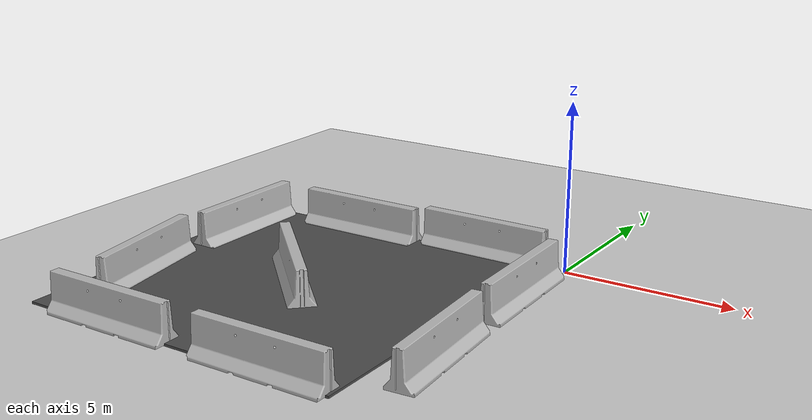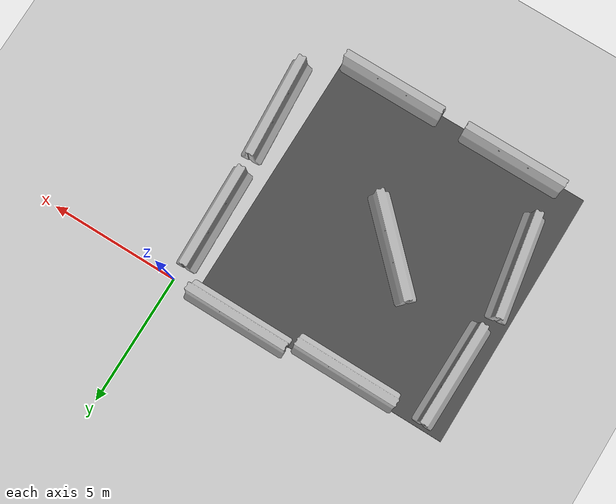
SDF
<sdf version="1.4">
 <world name="default">
  <light name="sun" type="directional">
   <pose>0 0 10 0 -0 0</pose>
   <diffuse>0.8 0.8 0.8 1</diffuse>
   <specular>0.2 0.2 0.2 1</specular>
   <attenuation>
    <range>1000</range>
    <constant>0.9</constant>
    <linear>0.01</linear>
    <quadratic>0.001</quadratic>
   </attenuation>
   <direction>-0.5 0.1 -0.9</direction>
  </light>
  <model name="ground_plane">
   <static>1</static>
   <link name="link">
    <collision name="collision">
     <geometry><plane><normal>0 0 1</normal><size>100 100</size></plane></geometry>
     <surface><friction><ode><mu>100</mu><mu2>50</mu2></ode></friction></surface>
    </collision>
    <visual name="visual">
     <cast_shadows>0</cast_shadows>
     <geometry><plane><normal>0 0 1</normal><size>100 100</size></plane></geometry>
     <material>
      <script><uri>file://media/materials/scripts/gazebo.material</uri><name>Gazebo/Grey</name></script>
     </material>
    </visual>
    <velocity_decay><linear>0</linear><angular>0</angular></velocity_decay>
   </link>
  </model>
  <physics type="ode">
   <max_step_size>0.01</max_step_size>
   <real_time_factor>1</real_time_factor>
   <real_time_update_rate>100</real_time_update_rate>
   <gravity>0 0 -9.8</gravity>
  </physics>
  <scene><ambient>0.4 0.4 0.4 1</ambient><background>0.7 0.7 0.7 1</background><shadows>1</shadows></scene>
  <model name="jersey_barrier_izq_sup">
   <static>1</static>
   <link name="link">
    <visual name="visual">
     <geometry><mesh><uri>model://jersey_barrier/meshes/jersey_barrier.dae</uri></mesh></geometry>
    </visual>
    <collision name="upright">
     <pose>0 0 0.5715 0 -0 0</pose>
     <geometry><box><size>4.06542 0.3063 1.143</size></box></geometry>
    </collision>
    <collision name="base">
     <pose>0 0 0.032258 0 -0 0</pose>
     <geometry><box><size>4.06542 0.8107 0.064516</size></box></geometry>
    </collision>
    <collision name="base2">
     <pose>0 0 0.1 0 -0 0</pose>
     <geometry><box><size>4.06542 0.65 0.1</size></box></geometry>
    </collision>
    <collision name="base3">
     <pose>0 0 0.2 0 -0 0</pose>
     <geometry><box><size>4.06542 0.5 0.1</size></box></geometry>
    </collision>
    <collision name="left-angle">
     <pose>0 -0.224 0.2401 0.9 -0 0</pose>
     <geometry><box><size>4.06542 0.5 0.064516</size></box></geometry>
    </collision>
    <collision name="right-angle">
     <pose>0 0.224 0.2401 -0.9 0 0</pose>
     <geometry><box><size>4.06542 0.5 0.064516</size></box></geometry>
    </collision>
    <velocity_decay><linear>0</linear><angular>0</angular></velocity_decay>
   </link>
   <pose>-8 -10 0 0 -0 0</pose>
  </model>
  <model name="jersey_barrier_izq_inf">
   <static>1</static>
   <link name="link">
    <visual name="visual">
     <geometry><mesh><uri>model://jersey_barrier/meshes/jersey_barrier.dae</uri></mesh></geometry>
    </visual>
    <collision name="upright">
     <pose>0 0 0.5715 0 -0 0</pose>
     <geometry><box><size>4.06542 0.3063 1.143</size></box></geometry>
    </collision>
    <collision name="base">
     <pose>0 0 0.032258 0 -0 0</pose>
     <geometry><box><size>4.06542 0.8107 0.064516</size></box></geometry>
    </collision>
    <collision name="base2">
     <pose>0 0 0.1 0 -0 0</pose>
     <geometry><box><size>4.06542 0.65 0.1</size></box></geometry>
    </collision>
    <collision name="base3">
     <pose>0 0 0.2 0 -0 0</pose>
     <geometry><box><size>4.06542 0.5 0.1</size></box></geometry>
    </collision>
    <collision name="left-angle">
     <pose>0 -0.224 0.2401 0.9 -0 0</pose>
     <geometry><box><size>4.06542 0.5 0.064516</size></box></geometry>
    </collision>
    <collision name="right-angle">
     <pose>0 0.224 0.2401 -0.9 0 0</pose>
     <geometry><box><size>4.06542 0.5 0.064516</size></box></geometry>
    </collision>
    <velocity_decay><linear>0</linear><angular>0</angular></velocity_decay>
   </link>
   <pose>-3 -10 0 0 -0 0</pose>
  </model>
  <model name="jersey_barrier_der_sup">
   <static>1</static>
   <link name="link">
    <visual name="visual">
     <geometry><mesh><uri>model://jersey_barrier/meshes/jersey_barrier.dae</uri></mesh></geometry>
    </visual>
    <collision name="upright">
     <pose>0 0 0.5715 0 -0 0</pose>
     <geometry><box><size>4.06542 0.3063 1.143</size></box></geometry>
    </collision>
    <collision name="base">
     <pose>0 0 0.032258 0 -0 0</pose>
     <geometry><box><size>4.06542 0.8107 0.064516</size></box></geometry>
    </collision>
    <collision name="base2">
     <pose>0 0 0.1 0 -0 0</pose>
     <geometry><box><size>4.06542 0.65 0.1</size></box></geometry>
    </collision>
    <collision name="base3">
     <pose>0 0 0.2 0 -0 0</pose>
     <geometry><box><size>4.06542 0.5 0.1</size></box></geometry>
    </collision>
    <collision name="left-angle">
     <pose>0 -0.224 0.2401 0.9 -0 0</pose>
     <geometry><box><size>4.06542 0.5 0.064516</size></box></geometry>
    </collision>
    <collision name="right-angle">
     <pose>0 0.224 0.2401 -0.9 0 0</pose>
     <geometry><box><size>4.06542 0.5 0.064516</size></box></geometry>
    </collision>
    <velocity_decay><linear>0</linear><angular>0</angular></velocity_decay>
   </link>
   <pose>-6.897329 -0.390697 0 0 -0 0</pose>
  </model>
  <model name="jersey_barrier_der_inf">
   <static>1</static>
   <link name="link">
    <visual name="visual">
     <geometry><mesh><uri>model://jersey_barrier/meshes/jersey_barrier.dae</uri></mesh></geometry>
    </visual>
    <collision name="upright">
     <pose>0 0 0.5715 0 -0 0</pose>
     <geometry><box><size>4.06542 0.3063 1.143</size></box></geometry>
    </collision>
    <collision name="base">
     <pose>0 0 0.032258 0 -0 0</pose>
     <geometry><box><size>4.06542 0.8107 0.064516</size></box></geometry>
    </collision>
    <collision name="base2">
     <pose>0 0 0.1 0 -0 0</pose>
     <geometry><box><size>4.06542 0.65 0.1</size></box></geometry>
    </collision>
    <collision name="base3">
     <pose>0 0 0.2 0 -0 0</pose>
     <geometry><box><size>4.06542 0.5 0.1</size></box></geometry>
    </collision>
    <collision name="left-angle">
     <pose>0 -0.224 0.2401 0.9 -0 0</pose>
     <geometry><box><size>4.06542 0.5 0.064516</size></box></geometry>
    </collision>
    <collision name="right-angle">
     <pose>0 0.224 0.2401 -0.9 0 0</pose>
     <geometry><box><size>4.06542 0.5 0.064516</size></box></geometry>
    </collision>
    <velocity_decay><linear>0</linear><angular>0</angular></velocity_decay>
   </link>
   <pose>-2.679591 -0.018743 0 0 -0 0</pose>
  </model>
  <model name="jersey_barrier_sup_izq">
   <static>1</static>
   <link name="link">
    <visual name="visual">
     <geometry><mesh><uri>model://jersey_barrier/meshes/jersey_barrier.dae</uri></mesh></geometry>
    </visual>
    <collision name="upright">
     <pose>0 0 0.5715 0 -0 0</pose>
     <geometry><box><size>4.06542 0.3063 1.143</size></box></geometry>
    </collision>
    <collision name="base">
     <pose>0 0 0.032258 0 -0 0</pose>
     <geometry><box><size>4.06542 0.8107 0.064516</size></box></geometry>
    </collision>
    <collision name="base2">
     <pose>0 0 0.1 0 -0 0</pose>
     <geometry><box><size>4.06542 0.65 0.1</size></box></geometry>
    </collision>
    <collision name="base3">
     <pose>0 0 0.2 0 -0 0</pose>
     <geometry><box><size>4.06542 0.5 0.1</size></box></geometry>
    </collision>
    <collision name="left-angle">
     <pose>0 -0.224 0.2401 0.9 -0 0</pose>
     <geometry><box><size>4.06542 0.5 0.064516</size></box></geometry>
    </collision>
    <collision name="right-angle">
     <pose>0 0.224 0.2401 -0.9 0 0</pose>
     <geometry><box><size>4.06542 0.5 0.064516</size></box></geometry>
    </collision>
    <velocity_decay><linear>0</linear><angular>0</angular></velocity_decay>
   </link>
   <pose>-10.0607 -6.69856 0 0 0 -1.4</pose>
  </model>
  <model name="jersey_barrier_sup_der">
   <static>1</static>
   <link name="link">
    <visual name="visual">
     <geometry><mesh><uri>model://jersey_barrier/meshes/jersey_barrier.dae</uri></mesh></geometry>
    </visual>
    <collision name="upright">
     <pose>0 0 0.5715 0 -0 0</pose>
     <geometry><box><size>4.06542 0.3063 1.143</size></box></geometry>
    </collision>
    <collision name="base">
     <pose>0 0 0.032258 0 -0 0</pose>
     <geometry><box><size>4.06542 0.8107 0.064516</size></box></geometry>
    </collision>
    <collision name="base2">
     <pose>0 0 0.1 0 -0 0</pose>
     <geometry><box><size>4.06542 0.65 0.1</size></box></geometry>
    </collision>
    <collision name="base3">
     <pose>0 0 0.2 0 -0 0</pose>
     <geometry><box><size>4.06542 0.5 0.1</size></box></geometry>
    </collision>
    <collision name="left-angle">
     <pose>0 -0.224 0.2401 0.9 -0 0</pose>
     <geometry><box><size>4.06542 0.5 0.064516</size></box></geometry>
    </collision>
    <collision name="right-angle">
     <pose>0 0.224 0.2401 -0.9 0 0</pose>
     <geometry><box><size>4.06542 0.5 0.064516</size></box></geometry>
    </collision>
    <velocity_decay><linear>0</linear><angular>0</angular></velocity_decay>
   </link>
   <pose>-10.0774 -2.27159 0 0 -0 1.56</pose>
  </model>
  <model name="jersey_barrier_inf_izq">
   <static>1</static>
   <link name="link">
    <visual name="visual">
     <geometry><mesh><uri>model://jersey_barrier/meshes/jersey_barrier.dae</uri></mesh></geometry>
    </visual>
    <collision name="upright">
     <pose>0 0 0.5715 0 -0 0</pose>
     <geometry><box><size>4.06542 0.3063 1.143</size></box></geometry>
    </collision>
    <collision name="base">
     <pose>0 0 0.032258 0 -0 0</pose>
     <geometry><box><size>4.06542 0.8107 0.064516</size></box></geometry>
    </collision>
    <collision name="base2">
     <pose>0 0 0.1 0 -0 0</pose>
     <geometry><box><size>4.06542 0.65 0.1</size></box></geometry>
    </collision>
    <collision name="base3">
     <pose>0 0 0.2 0 -0 0</pose>
     <geometry><box><size>4.06542 0.5 0.1</size></box></geometry>
    </collision>
    <collision name="left-angle">
     <pose>0 -0.224 0.2401 0.9 -0 0</pose>
     <geometry><box><size>4.06542 0.5 0.064516</size></box></geometry>
    </collision>
    <collision name="right-angle">
     <pose>0 0.224 0.2401 -0.9 0 0</pose>
     <geometry><box><size>4.06542 0.5 0.064516</size></box></geometry>
    </collision>
    <velocity_decay><linear>0</linear><angular>0</angular></velocity_decay>
   </link>
   <pose>0.115252 -7.074732 0 0 -0 1.64</pose>
  </model>
  <model name="jersey_barrier_inf_der">
   <static>1</static>
   <link name="link">
    <visual name="visual">
     <geometry><mesh><uri>model://jersey_barrier/meshes/jersey_barrier.dae</uri></mesh></geometry>
    </visual>
    <collision name="upright">
     <pose>0 0 0.5715 0 -0 0</pose>
     <geometry><box><size>4.06542 0.3063 1.143</size></box></geometry>
    </collision>
    <collision name="base">
     <pose>0 0 0.032258 0 -0 0</pose>
     <geometry><box><size>4.06542 0.8107 0.064516</size></box></geometry>
    </collision>
    <collision name="base2">
     <pose>0 0 0.1 0 -0 0</pose>
     <geometry><box><size>4.06542 0.65 0.1</size></box></geometry>
    </collision>
    <collision name="base3">
     <pose>0 0 0.2 0 -0 0</pose>
     <geometry><box><size>4.06542 0.5 0.1</size></box></geometry>
    </collision>
    <collision name="left-angle">
     <pose>0 -0.224 0.2401 0.9 -0 0</pose>
     <geometry><box><size>4.06542 0.5 0.064516</size></box></geometry>
    </collision>
    <collision name="right-angle">
     <pose>0 0.224 0.2401 -0.9 0 0</pose>
     <geometry><box><size>4.06542 0.5 0.064516</size></box></geometry>
    </collision>
    <velocity_decay><linear>0</linear><angular>0</angular></velocity_decay>
   </link>
   <pose>-0.097526 -2.564536 0 0 -0 1.6</pose>
  </model>
  <model name="asphalt_plane">
   <static>1</static>
   <link name="link">
    <collision name="collision"><geometry><box><size>10 10 0.1</size></box></geometry></collision>
    <visual name="visual">
     <cast_shadows>0</cast_shadows>
     <geometry><box><size>10 10 0.1</size></box></geometry>
     <material>
      <script>
       <uri>model://asphalt_plane/materials/scripts</uri>
       <uri>model://asphalt_plane/materials/textures</uri>
       <name>vrc/asphalt</name>
      </script>
     </material>
    </visual>
    <velocity_decay><linear>0</linear><angular>0</angular></velocity_decay>
   </link>
   <pose>-5.934092 -5.103363 0 0 -0 0</pose>
  </model>
  <model name="jersey_barrier_interno">
   <static>1</static>
   <link name="link">
    <visual name="visual">
     <geometry><mesh><uri>model://jersey_barrier/meshes/jersey_barrier.dae</uri></mesh></geometry>
    </visual>
    <collision name="upright">
     <pose>0 0 0.5715 0 -0 0</pose>
     <geometry><box><size>4.06542 0.3063 1.143</size></box></geometry>
    </collision>
    <collision name="base">
     <pose>0 0 0.032258 0 -0 0</pose>
     <geometry><box><size>4.06542 0.8107 0.064516</size></box></geometry>
    </collision>
    <collision name="base2">
     <pose>0 0 0.1 0 -0 0</pose>
     <geometry><box><size>4.06542 0.65 0.1</size></box></geometry>
    </collision>
    <collision name="base3">
     <pose>0 0 0.2 0 -0 0</pose>
     <geometry><box><size>4.06542 0.5 0.1</size></box></geometry>
    </collision>
    <collision name="left-angle">
     <pose>0 -0.224 0.2401 0.9 -0 0</pose>
     <geometry><box><size>4.06542 0.5 0.064516</size></box></geometry>
    </collision>
    <collision name="right-angle">
     <pose>0 0.224 0.2401 -0.9 0 0</pose>
     <geometry><box><size>4.06542 0.5 0.064516</size></box></geometry>
    </collision>
    <velocity_decay><linear>0</linear><angular>0</angular></velocity_decay>
   </link>
   <pose>-6 -5 0 0 0 2.36</pose>
  </model>
 </world>
</sdf>
